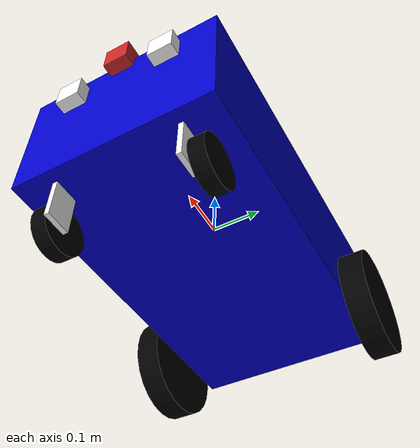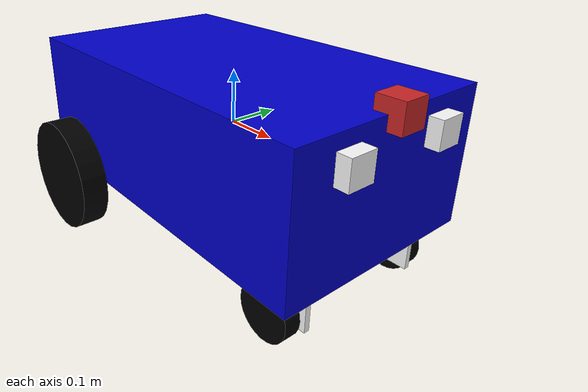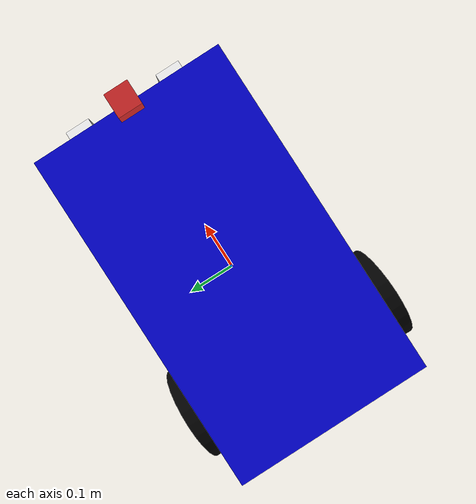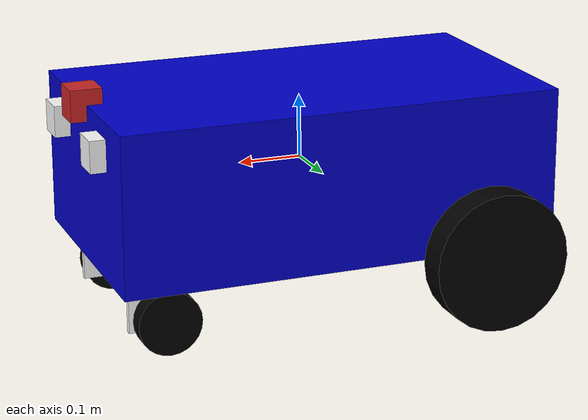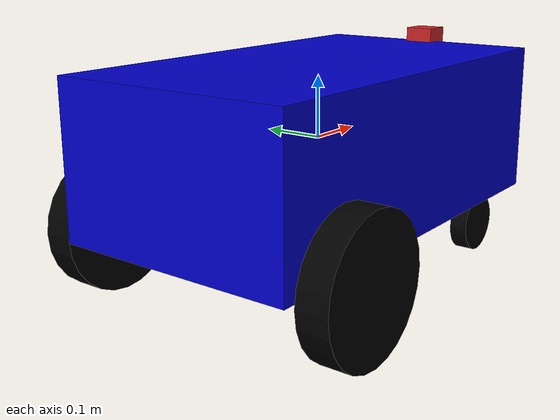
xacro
<?xml version="1.0"?>
<robot name="lmwr_diff_ultra_xacro" xmlns:xacro="http://ros.org/wiki/xacro">

  <xacro:property name="body_lenght" value="0.7" />
  <xacro:property name="body_width" value="0.4" />
  <xacro:property name="body_height" value="0.25" />
  <xacro:property name="traction_wheel_radius" value="0.11" />
  <xacro:property name="traction_wheel_width" value="0.05" />
  <xacro:property name="aux_wheel_radius" value="0.05" />
  <xacro:property name="aux_wheel_width" value="0.03" />
  <xacro:property name="support_lenght" value="0.6" />
  <xacro:property name="baselen" value="0.4" />
  <xacro:property name="wheeldiam" value="0.07" />
  <xacro:property name="camera_link" value="0.05" />

  <!--xacro:property name="pi" value="3.1415" /-->

  <material name="blue">
    <color rgba="0 0 0.8 1"/>
  </material>

  <material name="black">
    <color rgba="0 0 0 1"/>
  </material>

  <material name="white">
    <color rgba="1 1 1 1"/>
  </material>

  <xacro:macro name="default_inertial" params="mass">
    <inertial>
      <mass value="${mass}" />
      <inertia ixx="1.0" ixy="0.0" ixz="0.0" iyy="1.0" iyz="0.0" izz="1.0" />
    </inertial>
  </xacro:macro>

  <link name="main_body">
    <visual>
      <geometry>
        <box size="${body_lenght} ${body_width} ${body_height}"/>
      </geometry>
      <material name="blue"/>
    </visual>
    <collision>
      <geometry>
        <box size="${body_lenght} ${body_width} ${body_height}"/>
      </geometry>
    </collision>
    <xacro:default_inertial mass="13"/>
  </link>

  <xacro:macro name="front_sensor_sup_link" params="name side y_pos">
    <link name="${name}_front_sensor">
      <visual>
        <geometry>
          <box size="0.05 0.05 0.05"/>
        </geometry>
        <origin xyz="0 0 -0.05"/>
        <material name="white"/>
      </visual>
      <collision>
        <geometry>
          <box size="0.05 0.05 0.05"/>
        </geometry>
        <origin xyz="0 0 -0.05"/>
      </collision>
      <xacro:default_inertial mass="0.01"/>
    </link>

    <joint name="${side}_front_base_joint" type="fixed">
      <axis rpy="0 0 0" xyz="0 0 1"/>
      <parent link="main_body"/>
      <child link="${name}_front_sensor"/>
      <origin xyz="${body_lenght/2} ${side*y_pos} 0.125" />
    </joint>

    <gazebo reference="${name}_front_sensor">
     <sensor type="ray" name="TeraRanger">
      <pose>0 0 0 0 0 0</pose>
      <visualize>true</visualize>
      <update_rate>50</update_rate>
      <ray>
         <scan>
            <horizontal>
               <samples>10</samples>
               <resolution>1</resolution>
               <min_angle>-0.14835</min_angle>
               <max_angle>0.14835</max_angle>
            </horizontal>
            <vertical>
               <samples>10</samples>
               <resolution>1</resolution>
               <min_angle>-0.14835</min_angle>
               <max_angle>0.14835</max_angle>
            </vertical>
         </scan>
         <range>
            <min>0.01</min>
            <max>2</max>
            <resolution>0.02</resolution>
         </range>
      </ray>
      <plugin filename="libgazebo_ros_range.so" name="gazebo_ros_range">
        <gaussianNoise>0.005</gaussianNoise>
        <alwaysOn>true</alwaysOn>
        <updateRate>50</updateRate>
        <topicName>sensor/${name}_ultrasonic_front</topicName>
        <frameName>${name}_front_sensor</frameName>
        <radiation>ULTRASOUND</radiation>
        <fov>0.2967</fov>
      </plugin>
     </sensor>
   </gazebo>

  </xacro:macro>

  <!-- Camera -->
  <link name="camera_link">
    <collision>
      <origin xyz="0 0 0" rpy="0 0 0"/>
      <geometry>
    <box size="${camera_link} ${camera_link} ${camera_link}"/>
      </geometry>
    </collision>

    <visual>
      <origin xyz="0 0 0" rpy="0 0 0"/>
      <geometry>
    <box size="${camera_link} ${camera_link} ${camera_link}"/>
      </geometry>
      <material name="red"/>
    </visual>

    <inertial>
      <mass value="1e-5" />
      <origin xyz="0 0 0" rpy="0 0 0"/>
      <inertia ixx="1e-6" ixy="0" ixz="0" iyy="1e-6" iyz="0" izz="1e-6" />
    </inertial>
  </link>

  <joint name="camera_joint" type="fixed">
    <axis xyz="0 1 0" />
    <origin xyz="${body_lenght/2} 0 0.125" rpy="0 0 0"/>
    <parent link="main_body"/>
    <child link="camera_link"/>
  </joint>

  <!-- camera -->
  <gazebo reference="camera_link">
    <sensor type="camera" name="camera1">
      <update_rate>30.0</update_rate>
      <camera name="head">
        <horizontal_fov>1.3962634</horizontal_fov>
        <image>
          <width>800</width>
          <height>800</height>
          <format>R8G8B8</format>
        </image>
        <clip>
          <near>0.02</near>
          <far>300</far>
        </clip>
        <noise>
          <type>gaussian</type>
          <!-- Noise is sampled independently per pixel on each frame.
               That pixel's noise value is added to each of its color
               channels, which at that point lie in the range [0,1]. -->
          <mean>0.0</mean>
          <stddev>0.007</stddev>
        </noise>
      </camera>
      <plugin name="camera_controller" filename="libgazebo_ros_camera.so">
        <alwaysOn>true</alwaysOn>
        <updateRate>0.0</updateRate>
        <cameraName>sensor/camera1</cameraName>
        <imageTopicName>image_raw</imageTopicName>
        <cameraInfoTopicName>camera_info</cameraInfoTopicName>
        <frameName>camera_link</frameName>
        <hackBaseline>0.07</hackBaseline>
        <distortionK1>0.0</distortionK1>
        <distortionK2>0.0</distortionK2>
        <distortionK3>0.0</distortionK3>
        <distortionT1>0.0</distortionT1>
        <distortionT2>0.0</distortionT2>
      </plugin>
    </sensor>
  </gazebo>

  <!-- IMU -->
  <gazebo>
    <plugin name="imu_plugin" filename="libgazebo_ros_imu.so">
      <alwaysOn>true</alwaysOn>
      <bodyName>main_body</bodyName>
      <topicName>imu</topicName>
      <serviceName>imu_service</serviceName>
      <gaussianNoise>0.0</gaussianNoise>
      <updateRate>20.0</updateRate>
    </plugin>
  </gazebo>

  <!-- GPS -->
  <gazebo>
    <plugin name="gps_controller" filename="libhector_gazebo_ros_gps.so">
      <alwayson>true</alwayson>
      <updaterate>1.0</updaterate>
      <bodyname>main_body</bodyname>
      <topicname>fix</topicname>
      <velocitytopicname>/fix_velocity</velocitytopicname>
      <drift>5.0 5.0 5.0</drift>
      <gaussiannoise>0.1 0.1 0.1</gaussiannoise>
      <velocitydrift>0 0 0</velocitydrift>
      <velocitygaussiannoise>0.1 0.1 0.1</velocitygaussiannoise>
    </plugin>
  </gazebo>

  <xacro:macro name="aux_wheel" params="side reflect">

    <link name="${side}_aux_wheel">
      <visual>
        <!-- origin xyz="0 ${reflect*aux_wheel_width/2} 0" rpy="${pi/2} 0 0" / -->
        <origin xyz="0 0 0" rpy="${pi/2} 0 0" />
        <geometry>
          <cylinder radius="${aux_wheel_radius}" length="${aux_wheel_width}"/>
        </geometry>
        <material name="black"/>
      </visual>
      <collision>
        <!-- origin xyz="0 ${reflect*aux_wheel_width/2} 0" rpy="${pi/2} 0 0" / -->
        <origin xyz="0 0 0" rpy="${pi/2} 0 0" />
        <geometry>
          <cylinder radius="${aux_wheel_radius}" length="${aux_wheel_width}"/>
        </geometry>
      </collision>
      <xacro:default_inertial mass="1"/>
    </link>
    <joint name="${side}_aux_wheel_joint" type="continuous">
      <axis xyz="0 1 0" rpy="0 0 0" />
      <parent link="${side}_front_support"/>
      <child link="${side}_aux_wheel"/>
      <origin xyz="-0.03 0 -0.06" rpy="0 0 0"/>
      <!-- origin xyz="-0.03 0 -0.06" rpy="0 0 0"/ -->
    </joint>

    <!-- This block provides the simulator (Gazebo) with information on a few additional
    physical properties. See http://gazebosim.org/tutorials/?tut=ros_urdf for more-->
    <gazebo reference="${side}_aux_wheel">
      <mu1 value="200.0"/>
      <mu2 value="100.0"/>
      <kp value="10000000.0" />
      <kd value="1.0" />
      <material>Gazebo/Grey</material>
    </gazebo>

  </xacro:macro>

  <xacro:macro name="support" params="side displacement reflect">
    <link name="${side}_front_support">
      <visual>
        <geometry>
          <box size="0.05 0.01 0.08"/>
        </geometry>
        <origin xyz="0 ${displacement} -0.04"/>
        <material name="white"/>
      </visual>
      <collision>
        <geometry>
          <box size="0.05 0.01 0.08"/>
        </geometry>
        <origin xyz="0 ${displacement} -0.04"/>
      </collision>
      <xacro:default_inertial mass="0.2"/>
    </link>

    <joint name="${side}_front_base_joint" type="continuous">
      <axis rpy="0 0 0" xyz="0 0 1"/>
      <parent link="main_body"/>
      <child link="${side}_front_support"/>
      <origin xyz="0.3 ${reflect*0.15} -0.125" />
    </joint>
    <xacro:aux_wheel side="${side}"  reflect="${reflect}"/>

  </xacro:macro>

  <xacro:macro name="traction_wheel" params="side reflect">

    <link name="${side}_traction_wheel">
      <visual>
        <origin xyz="0 ${reflect*traction_wheel_width/2} 0" rpy="${pi/2} 0 0" />
        <geometry>
          <cylinder radius="${traction_wheel_radius}" length="${traction_wheel_width}"/>
        </geometry>
        <material name="black"/>
      </visual>
      <collision>
        <origin xyz="0 ${reflect*traction_wheel_width/2} 0" rpy="${pi/2} 0 0" />
        <geometry>
          <cylinder radius="${traction_wheel_radius}" length="${traction_wheel_width}"/>
        </geometry>
      </collision>
      <xacro:default_inertial mass="1"/>
    </link>
    <joint name="${side}_traction_wheel_joint" type="continuous">
      <axis xyz="0 1 0" rpy="0 0 0" />
      <parent link="main_body"/>
      <child link="${side}_traction_wheel"/>
      <origin xyz="-${body_lenght/3} ${reflect*(body_width/2+0.01)} ${-body_height/2}" rpy="0 0 0"/>
    </joint>

    <!-- This block provides the simulator (Gazebo) with information on a few additional
    physical properties. See http://gazebosim.org/tutorials/?tut=ros_urdf for more-->
    <gazebo reference="${side}_traction_wheel">
      <mu1 value="200.0"/>
      <mu2 value="100.0"/>
      <kp value="10000000.0" />
      <kd value="1.0" />
      <material>Gazebo/Grey</material>
    </gazebo>

    <!-- This block connects the wheel joint to an actuator (motor), which informs both
    simulation and visualization of the robot -->
    <transmission name="${side}_traction_wheel_trans">
      <type>transmission_interface/SimpleTransmission</type>
      <actuator name="${side}_traction_wheel_motor">
        <mechanicalReduction>1</mechanicalReduction>
      </actuator>
      <joint name="${side}_traction_wheel_joint">
        <hardwareInterface>hardware_interface/VelocityJointInterface</hardwareInterface>
      </joint>
    </transmission>

  </xacro:macro>

  <xacro:traction_wheel side="left" reflect="-1"/>
  <xacro:traction_wheel side="right" reflect="1"/>

  <xacro:support side="left" displacement="${traction_wheel_width/2}" reflect="-1" />
  <xacro:support side="right" displacement="${-traction_wheel_width/2}" reflect="1" />

  <xacro:front_sensor_sup_link name="ultra_1" side="-1" y_pos="0.1" />
  <xacro:front_sensor_sup_link name="ultra_2" side="1" y_pos="0.1" />

  <!-- Gazebo plugin for ROS Control -->
  <gazebo>
    <plugin name="gazebo_ros_control" filename="libgazebo_ros_control.so">
      <robotNamespace>/</robotNamespace>
    </plugin>
  </gazebo>

</robot>
